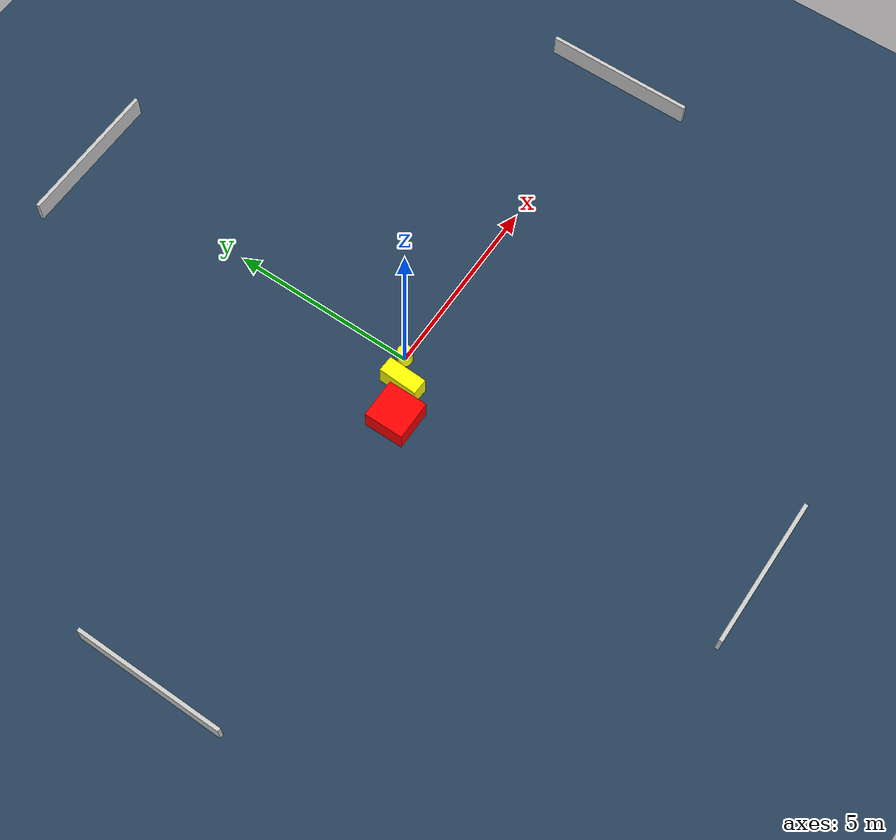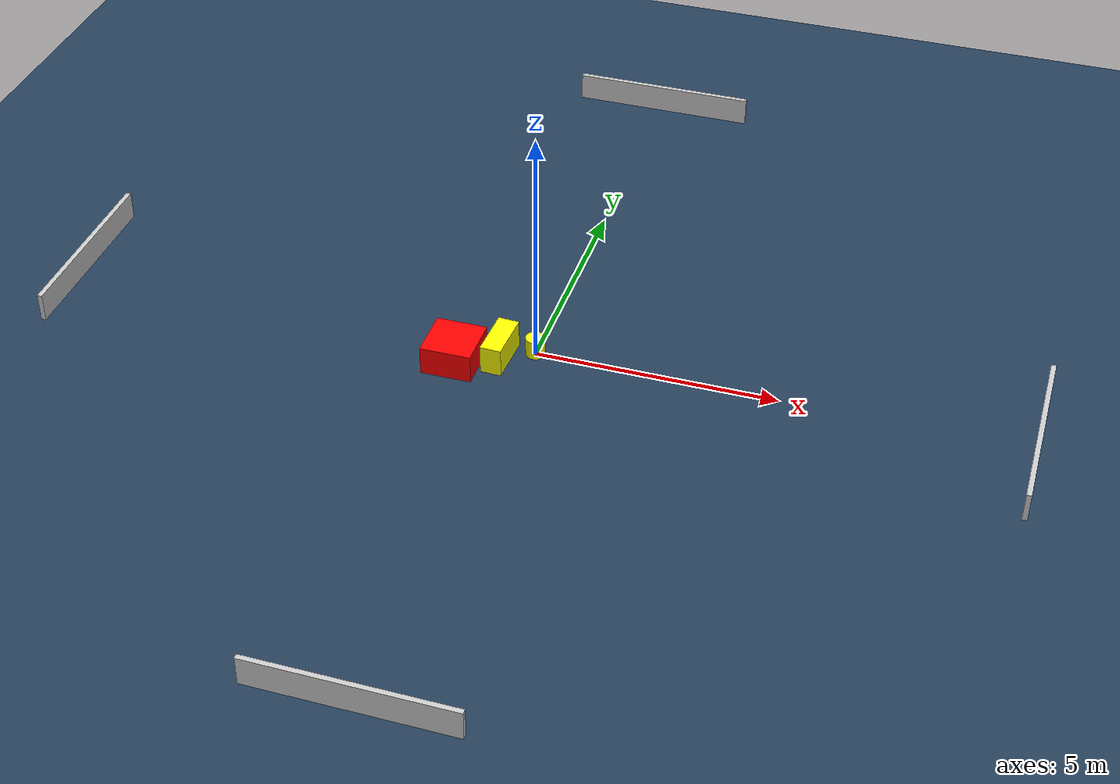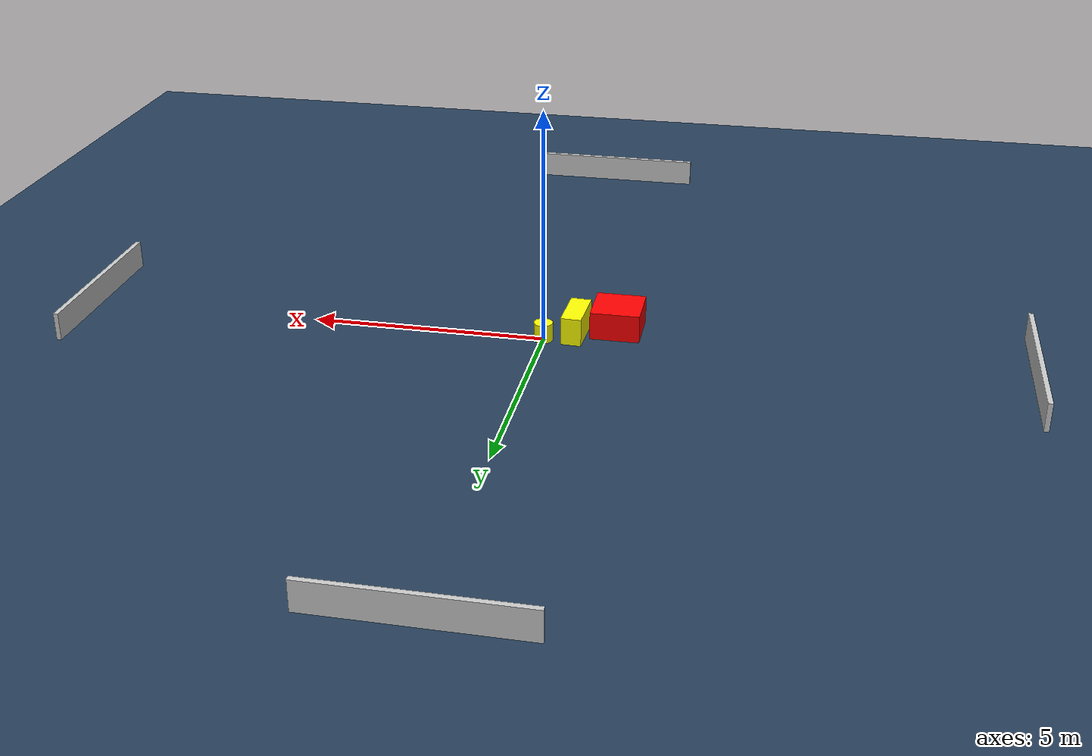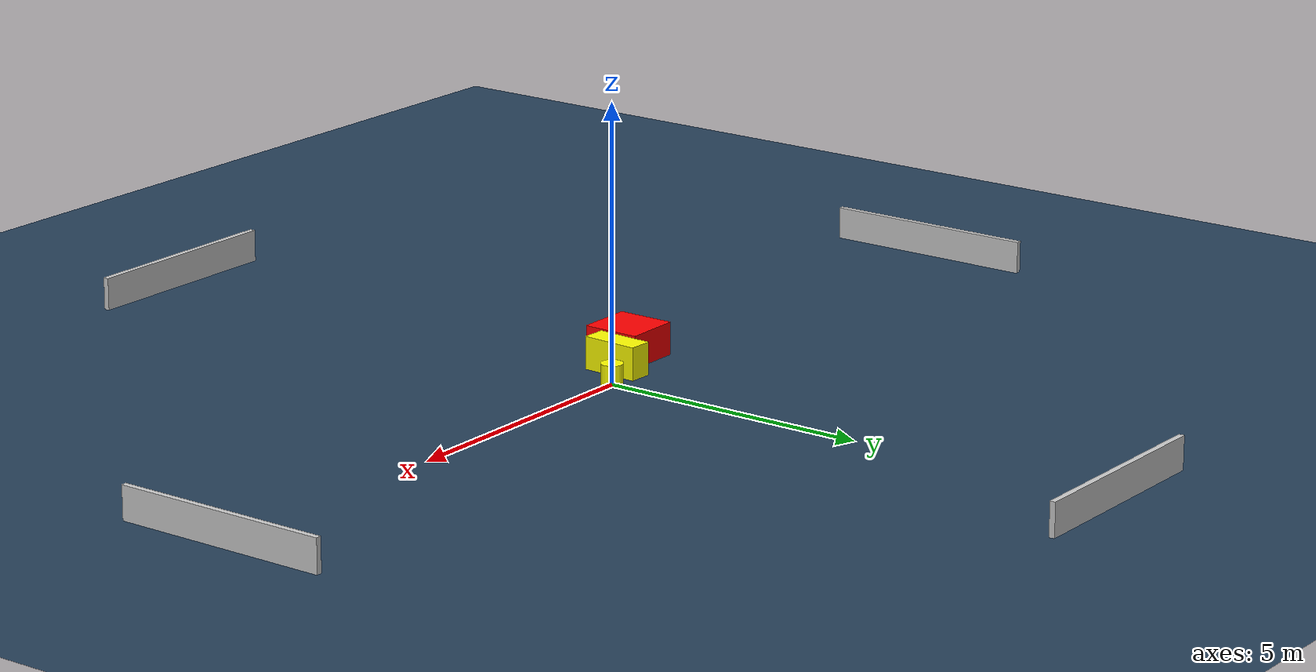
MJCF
<?xml version="1.0" ?>
<mujoco model="generated_environment">
  <option timestep="0.01" integrator="RK4" cone="elliptic"/>
  <default>
    <geom density="1"/>
  </default>
  <asset>
    <texture builtin="gradient" height="3072" name="skybox" rgb1="0.3 0.5 0.7" rgb2="0 0 0" type="skybox" width="512"/>
    <texture builtin="checker" height="300" name="groundplane" rgb1="0.2 0.3 0.4" rgb2="0.1 0.2 0.3" type="2d" width="300"/>
    <material name="groundplane" reflectance="0.2" texrepeat="5 5" texture="groundplane"/>
  </asset>
  <worldbody>
    <light dir="0 0 -1" directional="true" pos="0 0 1.5"/>
    <geom condim="3" friction="0.5 0.005 0.001" material="groundplane" name="floor" pos="0 0 0" size="0 0 0.05" type="plane"/>
    <body name="walls">
      <geom name="wall_1" condim="4" pos="-10.0 0.0 0.3" rgba="0.800000011920929 0.800000011920929 0.800000011920929 1.0" size="0.05 2.0 0.3" type="box"/>
      <geom name="wall_2" condim="4" pos="10.0 0.0 0.3" rgba="0.800000011920929 0.800000011920929 0.800000011920929 1.0" size="0.05 2.0 0.3" type="box"/>
      <geom name="wall_3" condim="4" pos="0.0 -10.0 0.3" rgba="0.800000011920929 0.800000011920929 0.800000011920929 1.0" size="2.0 0.05 0.3" type="box"/>
      <geom name="wall_4" condim="4" pos="0.0 10.0 0.3" rgba="0.800000011920929 0.800000011920929 0.800000011920929 1.0" size="2.0 0.05 0.3" type="box"/>
    </body>
    <body name="robot">
      <joint name="joint_x" type="slide" pos="0 0 0" axis="1 0 0"/>
      <joint name="joint_y" type="slide" pos="0 0 0" axis="0 1 0"/>
      <geom name="robot" type="cylinder" pos="0.0 0.0 0.2" size="0.2 0.2 0.0" mass="5.0" friction="1.0 0.005 0.0001" condim="4" rgba="1.0 1.0 0.0 1.0"/>
    </body>
    <body name="obstacle_1_movable">
      <geom name="obstacle_1_movable" condim="4" pos="-0.6307154137527885 -0.366203327145302 0.3" euler="0 0 177.58827600816446" friction="0.0 0.005 0.001" rgba="1.0 1.0 0.0 1.0" size="0.21752249464689946 0.527248401897072 0.3" type="box" mass="0.1"/>
      <joint type="free"/>
    </body>
    <body name="obstacle_2_static">
      <geom name="obstacle_2_static" condim="4" pos="-1.4707238611409807 -0.747652846360319 0.3" euler="0 0 180.2906175611107" friction="0.0 0.005 0.001" rgba="1.0 0.0 0.0 1.0" size="0.5256186083766774 0.5305542600764088 0.3" type="box"/>
    </body>
  </worldbody>
  <actuator>
    <motor name="actuator_x" joint="joint_x" gear="1" ctrlrange="-1 1"/>
    <motor name="actuator_y" joint="joint_y" gear="1" ctrlrange="-1 1"/>
  </actuator>
</mujoco>
